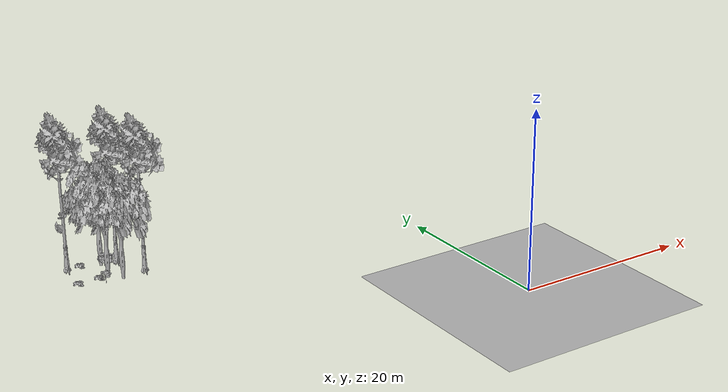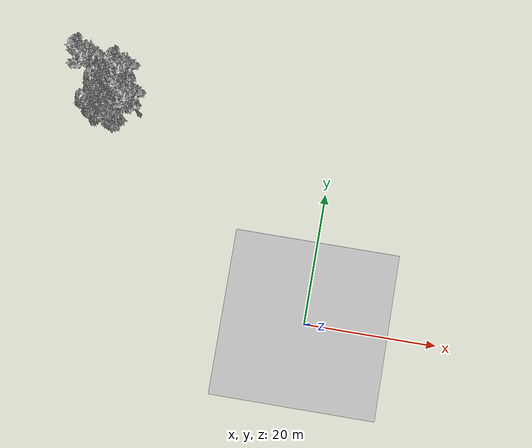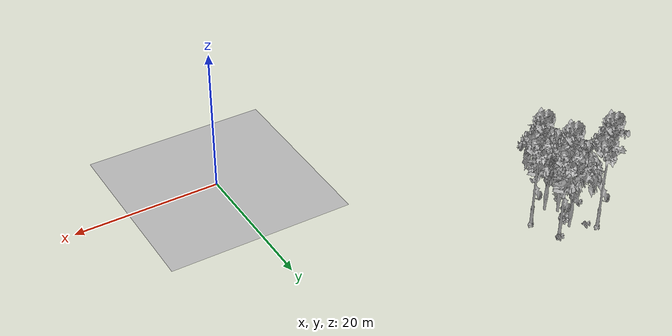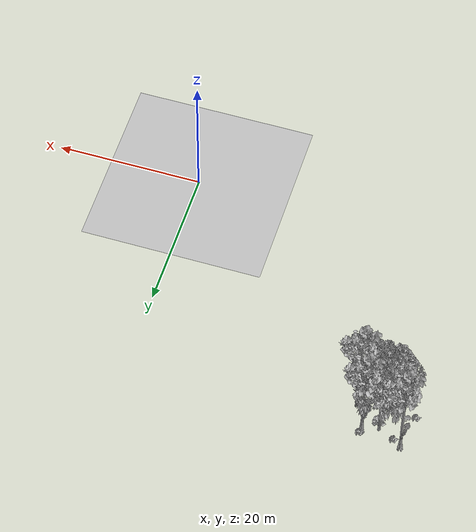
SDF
<sdf version="1.7">
 <world name="default">
  <model name="ground_plane">
   <static>1</static>
   <link name="link">
    <collision name="collision">
     <pose>-50 0 0 0 -0 0</pose>
     <geometry><plane><normal>0 0 1</normal><size>80 80</size></plane></geometry>
     <surface><contact><ode><min_depth>0.01</min_depth><max_vel>0</max_vel></ode></contact></surface>
    </collision>
    <visual name="grass">
     <cast_shadows>0</cast_shadows>
     <geometry>
      <mesh>
       <scale>0.46714285714285714 0.46714285714285714 0.1</scale>
       <uri>file://grass_plane/meshes/grass_plane.dae</uri>
      </mesh>
     </geometry>
    </visual>
   </link>
  </model>
  <model name="Tree 8">
   <static>1</static>
   <pose>-34.936821159421164 27.565292205015695 0 1.57079 -0 0</pose>
   <link name="link">
    <collision name="collision">
     <geometry><mesh><scale>3.5 5 3.5</scale><uri>model://tree_2/meshes/tree_2.obj</uri></mesh></geometry>
    </collision>
    <visual name="visual">
     <geometry><mesh><scale>3.5 5 3.5</scale><uri>model://tree_2/meshes/tree_2.obj</uri></mesh></geometry>
    </visual>
   </link>
  </model>
  <model name="Tree 239">
   <static>1</static>
   <pose>-32.041172902152205 31.447287763012767 0 1.57079 -0 0</pose>
   <link name="link">
    <collision name="collision">
     <geometry><mesh><scale>3.5 5 3.5</scale><uri>model://tree_9/meshes/tree_9.obj</uri></mesh></geometry>
    </collision>
    <visual name="visual">
     <geometry><mesh><scale>3.5 5 3.5</scale><uri>model://tree_9/meshes/tree_9.obj</uri></mesh></geometry>
    </visual>
   </link>
  </model>
  <model name="Tree 468">
   <static>1</static>
   <pose>-34.28416099296417 30.741829152320904 0 1.57079 -0 0</pose>
   <link name="link">
    <collision name="collision">
     <geometry><mesh><scale>3.5 5 3.5</scale><uri>model://tree_2/meshes/tree_2.obj</uri></mesh></geometry>
    </collision>
    <visual name="visual">
     <geometry><mesh><scale>3.5 5 3.5</scale><uri>model://tree_2/meshes/tree_2.obj</uri></mesh></geometry>
    </visual>
   </link>
  </model>
  <model name="Tree 555">
   <static>1</static>
   <pose>-33.73048890079546 26.419111979108877 0 1.57079 -0 0</pose>
   <link name="link">
    <collision name="collision">
     <geometry><mesh><scale>3.5 5 3.5</scale><uri>model://tree_2/meshes/tree_2.obj</uri></mesh></geometry>
    </collision>
    <visual name="visual">
     <geometry><mesh><scale>3.5 5 3.5</scale><uri>model://tree_2/meshes/tree_2.obj</uri></mesh></geometry>
    </visual>
   </link>
  </model>
  <model name="Tree 610">
   <static>1</static>
   <pose>-37.441624577179226 32.38746308841296 0 1.57079 -0 0</pose>
   <link name="link">
    <collision name="collision">
     <geometry><mesh><scale>3.5 5 3.5</scale><uri>model://tree_9/meshes/tree_9.obj</uri></mesh></geometry>
    </collision>
    <visual name="visual">
     <geometry><mesh><scale>3.5 5 3.5</scale><uri>model://tree_9/meshes/tree_9.obj</uri></mesh></geometry>
    </visual>
   </link>
  </model>
  <model name="Tree 630">
   <static>1</static>
   <pose>-30.520419108208152 27.697317604143336 0 1.57079 -0 0</pose>
   <link name="link">
    <collision name="collision">
     <geometry><mesh><scale>3.5 5 3.5</scale><uri>model://tree_9/meshes/tree_9.obj</uri></mesh></geometry>
    </collision>
    <visual name="visual">
     <geometry><mesh><scale>3.5 5 3.5</scale><uri>model://tree_9/meshes/tree_9.obj</uri></mesh></geometry>
    </visual>
   </link>
  </model>
  <model name="Bush 126">
   <static>1</static>
   <pose>-31.879235206022607 31.843534158219228 0 1.57079 -0 0</pose>
   <link name="link">
    <collision name="collision">
     <geometry><mesh><scale>2 2 2</scale><uri>model://bush_2/meshes/bush_2.obj</uri></mesh></geometry>
     <surface><contact><collide_without_contact>false</collide_without_contact></contact></surface>
    </collision>
    <visual name="visual">
     <geometry><mesh><scale>2 2 2</scale><uri>model://bush_2/meshes/bush_2.obj</uri></mesh></geometry>
    </visual>
   </link>
  </model>
  <model name="Bush 149">
   <static>1</static>
   <pose>-36.326852662157506 31.58853426199512 0 1.57079 -0 0</pose>
   <link name="link">
    <collision name="collision">
     <geometry><mesh><scale>2 2 2</scale><uri>model://bush_2/meshes/bush_2.obj</uri></mesh></geometry>
     <surface><contact><collide_without_contact>false</collide_without_contact></contact></surface>
    </collision>
    <visual name="visual">
     <geometry><mesh><scale>2 2 2</scale><uri>model://bush_2/meshes/bush_2.obj</uri></mesh></geometry>
    </visual>
   </link>
  </model>
  <model name="Bush 161">
   <static>1</static>
   <pose>-35.867765390619574 27.69113145357845 0 1.57079 -0 0</pose>
   <link name="link">
    <collision name="collision">
     <geometry><mesh><scale>2 2 2</scale><uri>model://bush_2/meshes/bush_2.obj</uri></mesh></geometry>
     <surface><contact><collide_without_contact>false</collide_without_contact></contact></surface>
    </collision>
    <visual name="visual">
     <geometry><mesh><scale>2 2 2</scale><uri>model://bush_2/meshes/bush_2.obj</uri></mesh></geometry>
    </visual>
   </link>
  </model>
  <model name="Bush 335">
   <static>1</static>
   <pose>-38.287054621128675 27.60966561835494 0 1.57079 -0 0</pose>
   <link name="link">
    <collision name="collision">
     <geometry><mesh><scale>2 2 2</scale><uri>model://bush_2/meshes/bush_2.obj</uri></mesh></geometry>
     <surface><contact><collide_without_contact>false</collide_without_contact></contact></surface>
    </collision>
    <visual name="visual">
     <geometry><mesh><scale>2 2 2</scale><uri>model://bush_2/meshes/bush_2.obj</uri></mesh></geometry>
    </visual>
   </link>
  </model>
  <model name="Bush 454">
   <static>1</static>
   <pose>-33.948740655633834 29.86905328292589 0 1.57079 -0 0</pose>
   <link name="link">
    <collision name="collision">
     <geometry><mesh><scale>2 2 2</scale><uri>model://bush_1/meshes/bush_1.obj</uri></mesh></geometry>
     <surface><contact><collide_without_contact>false</collide_without_contact></contact></surface>
    </collision>
    <visual name="visual">
     <geometry><mesh><scale>2 2 2</scale><uri>model://bush_1/meshes/bush_1.obj</uri></mesh></geometry>
    </visual>
   </link>
  </model>
  <model name="Bush 571">
   <static>1</static>
   <pose>-35.644648837257286 26.41365072930887 0 1.57079 -0 0</pose>
   <link name="link">
    <collision name="collision">
     <geometry><mesh><scale>2 2 2</scale><uri>model://bush_5/meshes/bush_5.obj</uri></mesh></geometry>
     <surface><contact><collide_without_contact>false</collide_without_contact></contact></surface>
    </collision>
    <visual name="visual">
     <geometry><mesh><scale>2 2 2</scale><uri>model://bush_5/meshes/bush_5.obj</uri></mesh></geometry>
    </visual>
   </link>
  </model>
 </world>
</sdf>
